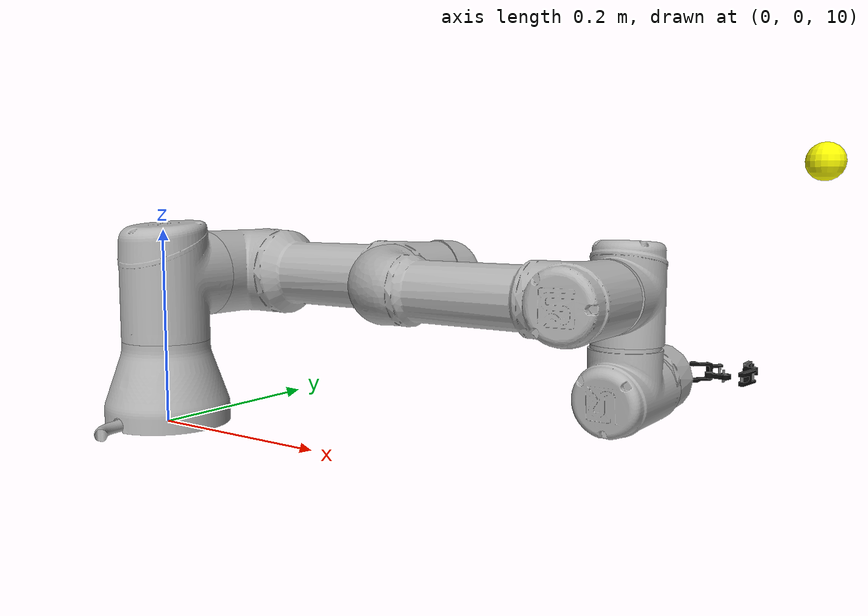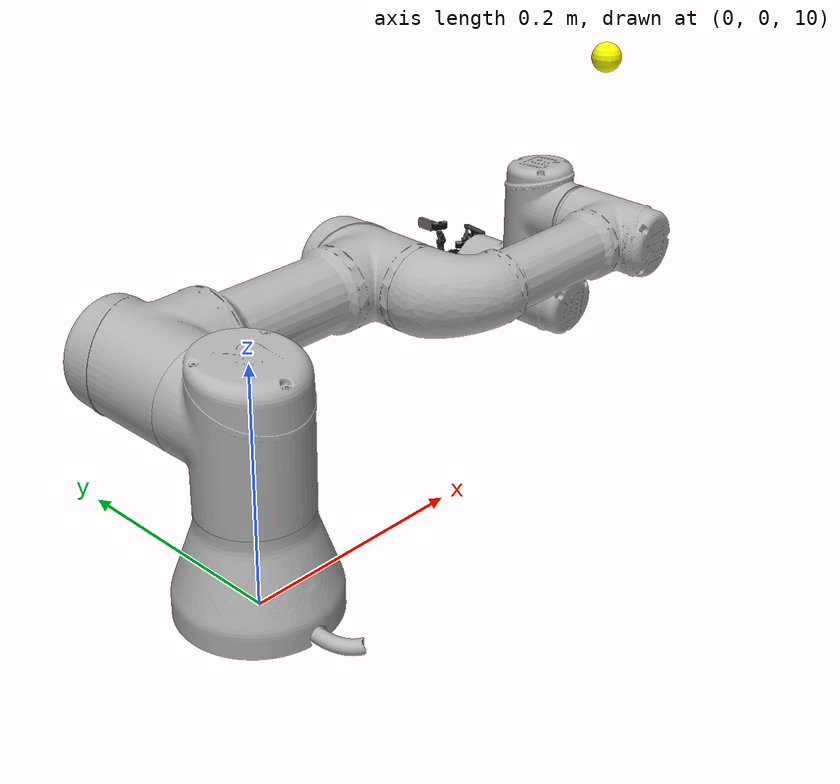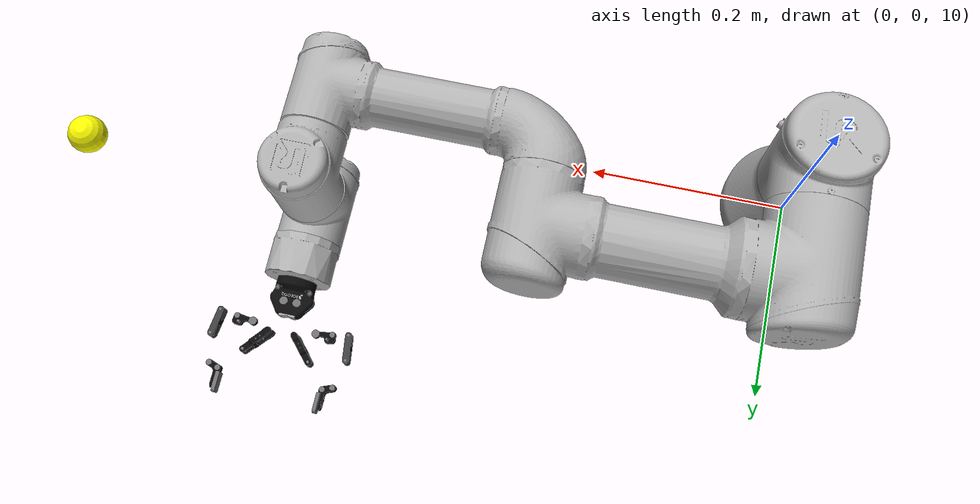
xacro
<?xml version="1.0"?>
<robot xmlns:xacro="http://ros.org/wiki/xacro"
       name="ur3" >

  <!-- common stuff -->
  <xacro:include filename="$(find ur_description)/urdf/common.gazebo_camera.xacro" />

  <!-- ur3 -->
  <xacro:include filename="$(find ur_description)/urdf/ur3.urdf_camera.xacro" />

  <!-- arm -->
  <xacro:ur3_robot prefix="" joint_limited="false" />

  <!-- gripper -->
  <xacro:include filename="$(find robotiq_85_description)/urdf/robotiq_85_gripper.urdf.xacro" />

  <link name="world" />

  <joint name="world_joint" type="fixed">
    <parent link="world" />
    <child link = "base_link" />
    <origin xyz="0.0 0.0 10.0" rpy="0.0 0.0 0.0" />
  </joint>

  <xacro:robotiq_85_gripper prefix="" parent="tool0" >
    <origin xyz="0.0 0.0 -0.01" rpy="1.57 -1.57 0"/>
  </xacro:robotiq_85_gripper>

</robot>

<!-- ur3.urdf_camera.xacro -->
<robot xmlns:xacro="http://ros.org/wiki/xacro">

<!--
  Author: Felix Messmer
-->

  <xacro:property name="cameraSize" value="0.04"/>
  <xacro:property name="cameraMass" value="0.15"/>

  <xacro:include filename="$(find ur_description)/urdf/ur.transmission.xacro" />
  <xacro:include filename="$(find ur_description)/urdf/ur.gazebo.xacro" />

  <xacro:property name="pi" value="3.14159265" />

  <!-- Inertia parameters -->
  <xacro:property name="base_mass" value="2.0" />  <!-- This mass might be incorrect -->
  <xacro:property name="shoulder_mass" value="2.0" />
  <xacro:property name="upper_arm_mass" value="3.42" />
  <xacro:property name="forearm_mass" value="1.26" />
  <xacro:property name="wrist_1_mass" value="0.8" />
  <xacro:property name="wrist_2_mass" value="0.8" />
  <xacro:property name="wrist_3_mass" value="0.35" />

  <xacro:property name="shoulder_cog" value="0.0 -0.02 0.0" />
  <xacro:property name="upper_arm_cog" value="0.13 0.0 0.1157" />
  <xacro:property name="forearm_cog" value="0.05 0.0 0.0238" />
  <xacro:property name="wrist_1_cog" value="0.0 0.0 0.01" />
  <xacro:property name="wrist_2_cog" value="0.0 0.0 0.01" />
  <xacro:property name="wrist_3_cog" value="0.0 0.0 -0.02" />

  <!-- Kinematic model -->
  <!-- Properties from urcontrol.conf -->
  <xacro:property name="ur3_d1" value="0.1519" />
  <xacro:property name="ur3_a2" value="-0.24365" />
  <xacro:property name="ur3_a3" value="-0.21325" />
  <xacro:property name="ur3_d4" value="0.11235" />
  <xacro:property name="ur3_d5" value="0.08535" />
  <xacro:property name="ur3_d6" value="0.0819" />

  <!-- Arbitrary offsets for shoulder/elbow joints -->
  <xacro:property name="shoulder_offset" value="0.1198" />  <!-- measured from model -->
  <xacro:property name="elbow_offset" value="-0.0925" /> <!-- measured from model -->

  <!-- link lengths used in model -->
  <xacro:property name="shoulder_height" value="${ur3_d1}" />
  <xacro:property name="upper_arm_length" value="${-ur3_a2}" />
  <xacro:property name="forearm_length" value="${-ur3_a3}" />
  <xacro:property name="wrist_1_length" value="${ur3_d4 - elbow_offset - shoulder_offset}" />
  <xacro:property name="wrist_2_length" value="${ur3_d5}" />
  <xacro:property name="wrist_3_length" value="${ur3_d6}" />

  <xacro:macro name="cylinder_inertial" params="radius length mass *origin">
    <inertial>
      <mass value="${mass}" />
      <xacro:insert_block name="origin" />
      <inertia ixx="${0.0833333 * mass * (3 * radius * radius + length * length)}" ixy="0.0" ixz="0.0"
        iyy="${0.0833333 * mass * (3 * radius * radius + length * length)}" iyz="0.0"
        izz="${0.5 * mass * radius * radius}" />
    </inertial>
  </xacro:macro>

  <xacro:macro name="ur3_robot" params="prefix joint_limited">

    <link name="${prefix}base_link" >
      <visual>
        <geometry>
          <mesh filename="package://ur_description/meshes/ur3/visual/base.dae"/>
        </geometry>
        <material name="LightGrey">
          <color rgba="0.7 0.7 0.7 1.0"/>
        </material>
      </visual>
      <collision>
        <geometry>
          <mesh filename="package://ur_description/meshes/ur3/collision/base.stl"/>
        </geometry>
      </collision>
      <xacro:cylinder_inertial radius="0.075" length="0.038" mass="${base_mass}">
        <origin xyz="0.0 0.0 0.0" rpy="0 0 0" />
      </xacro:cylinder_inertial>
    </link>

    <joint name="${prefix}shoulder_pan_joint" type="revolute">
      <parent link="${prefix}base_link" />
      <child link = "${prefix}shoulder_link" />
      <origin xyz="0.0 0.0 ${shoulder_height}" rpy="0.0 0.0 0.0" />
      <axis xyz="0 0 1" />
      <xacro:unless value="${joint_limited}">
        <limit lower="${-2.0 * pi}" upper="${2.0 * pi}" effort="330.0" velocity="2.16"/>
      </xacro:unless>
      <xacro:if value="${joint_limited}">
        <limit lower="${-pi}" upper="${pi}" effort="330.0" velocity="2.16"/>
      </xacro:if>
      <dynamics damping="0.0" friction="0.0"/>
    </joint>

    <link name="${prefix}shoulder_link">
      <visual>
        <geometry>
          <mesh filename="package://ur_description/meshes/ur3/visual/shoulder.dae"/>
        </geometry>
        <material name="LightGrey">
          <color rgba="0.7 0.7 0.7 1.0"/>
        </material>
      </visual>
      <collision>
        <geometry>
          <mesh filename="package://ur_description/meshes/ur3/collision/shoulder.stl"/>
        </geometry>
      </collision>
      <xacro:cylinder_inertial radius="0.075" length="0.178" mass="${shoulder_mass}">
        <origin xyz="0.0 0.0 0.0" rpy="0 0 0" />
      </xacro:cylinder_inertial>
    </link>

    <joint name="${prefix}shoulder_lift_joint" type="revolute">
      <parent link="${prefix}shoulder_link" />
      <child link = "${prefix}upper_arm_link" />
      <origin xyz="0.0 ${shoulder_offset} 0.0" rpy="0.0 ${pi / 2.0} 0.0" />
      <axis xyz="0 1 0" />
      <xacro:unless value="${joint_limited}">
        <limit lower="${-2.0 * pi}" upper="${2.0 * pi}" effort="330.0" velocity="2.16"/>
      </xacro:unless>
      <xacro:if value="${joint_limited}">
        <limit lower="${-pi}" upper="${pi}" effort="330.0" velocity="2.16"/>
      </xacro:if>
      <dynamics damping="0.0" friction="0.0"/>
    </joint>

    <link name="${prefix}upper_arm_link">
      <visual>
        <geometry>
          <mesh filename="package://ur_description/meshes/ur3/visual/upperarm.dae"/>
        </geometry>
        <material name="LightGrey">
          <color rgba="0.7 0.7 0.7 1.0"/>
        </material>
      </visual>
      <collision>
        <geometry>
          <mesh filename="package://ur_description/meshes/ur3/collision/upperarm.stl"/>
        </geometry>
      </collision>
      <xacro:cylinder_inertial radius="0.075" length="${-ur3_a2}" mass="${upper_arm_mass}">
        <origin xyz="0.0 0.0 ${-ur3_a2/2.0}" rpy="0 0 0" />
      </xacro:cylinder_inertial>
    </link>

    <joint name="${prefix}elbow_joint" type="revolute">
      <parent link="${prefix}upper_arm_link" />
      <child link = "${prefix}forearm_link" />
      <origin xyz="0.0 ${elbow_offset} ${upper_arm_length}" rpy="0.0 0.0 0.0" />
      <axis xyz="0 1 0" />
      <xacro:unless value="${joint_limited}">
        <limit lower="${-2.0 * pi}" upper="${2.0 * pi}" effort="150.0" velocity="3.15"/>
      </xacro:unless>
      <xacro:if value="${joint_limited}">
        <limit lower="${-pi}" upper="${pi}" effort="150.0" velocity="3.15"/>
      </xacro:if>
      <dynamics damping="0.0" friction="0.0"/>
    </joint>

    <link name="${prefix}forearm_link">
      <visual>
         <geometry>
          <mesh filename="package://ur_description/meshes/ur3/visual/forearm.dae"/>
        </geometry>
        <material name="LightGrey">
          <color rgba="0.7 0.7 0.7 1.0"/>
        </material>
      </visual>
      <collision>
        <geometry>
          <mesh filename="package://ur_description/meshes/ur3/collision/forearm.stl"/>
        </geometry>
      </collision>
      <xacro:cylinder_inertial radius="0.075" length="${-ur3_a3}" mass="${forearm_mass}">
        <origin xyz="0.0 0.0 ${-ur3_a3/2.0}" rpy="0 0 0" />
      </xacro:cylinder_inertial>
    </link>

    <joint name="${prefix}wrist_1_joint" type="revolute">
      <parent link="${prefix}forearm_link" />
      <child link = "${prefix}wrist_1_link" />
      <origin xyz="0.0 0.0 ${forearm_length}" rpy="0.0 ${pi / 2.0} 0.0" />
      <axis xyz="0 1 0" />
      <xacro:unless value="${joint_limited}">
        <limit lower="${-2.0 * pi}" upper="${2.0 * pi}" effort="54.0" velocity="3.2"/>
      </xacro:unless>
      <xacro:if value="${joint_limited}">
        <limit lower="${-pi}" upper="${pi}" effort="54.0" velocity="3.2"/>
      </xacro:if>
      <dynamics damping="0.0" friction="0.0"/>
    </joint>

    <link name="${prefix}wrist_1_link">
      <visual>
        <geometry>
          <mesh filename="package://ur_description/meshes/ur3/visual/wrist1.dae"/>
        </geometry>
        <material name="LightGrey">
          <color rgba="0.7 0.7 0.7 1.0"/>
        </material>
      </visual>
      <collision>
        <geometry>
          <mesh filename="package://ur_description/meshes/ur3/collision/wrist1.stl"/>
        </geometry>
      </collision>
      <xacro:cylinder_inertial radius="0.075" length="0.12" mass="${wrist_1_mass}">
        <origin xyz="0.0 0.0 0.0" rpy="0 0 0" />
      </xacro:cylinder_inertial>
    </link>

    <joint name="${prefix}wrist_2_joint" type="revolute">
      <parent link="${prefix}wrist_1_link" />
      <child link = "${prefix}wrist_2_link" />
      <origin xyz="0.0 ${wrist_1_length} 0.0" rpy="0.0 0.0 0.0" />
      <axis xyz="0 0 1" />
      <xacro:unless value="${joint_limited}">
        <limit lower="${-2.0 * pi}" upper="${2.0 * pi}" effort="54.0" velocity="3.2"/>
      </xacro:unless>
      <xacro:if value="${joint_limited}">
        <limit lower="${-pi}" upper="${pi}" effort="54.0" velocity="3.2"/>
      </xacro:if>
      <dynamics damping="0.0" friction="0.0"/>
    </joint>

    <link name="${prefix}wrist_2_link">
      <visual>
        <geometry>
          <mesh filename="package://ur_description/meshes/ur3/visual/wrist2.dae"/>
        </geometry>
        <material name="LightGrey">
          <color rgba="0.7 0.7 0.7 1.0"/>
        </material>
      </visual>
      <collision>
        <geometry>
          <mesh filename="package://ur_description/meshes/ur3/collision/wrist2.stl"/>
        </geometry>
      </collision>
      <xacro:cylinder_inertial radius="0.075" length="0.12" mass="${wrist_2_mass}">
        <origin xyz="0.0 0.0 0.0" rpy="0 0 0" />
      </xacro:cylinder_inertial>
    </link>

    <joint name="${prefix}wrist_3_joint" type="revolute">
      <parent link="${prefix}wrist_2_link" />
      <child link = "${prefix}wrist_3_link" />
      <origin xyz="0.0 0.0 ${wrist_2_length}" rpy="0.0 0.0 0.0" />
      <axis xyz="0 1 0" />
      <xacro:unless value="${joint_limited}">
        <limit lower="${-2.0 * pi}" upper="${2.0 * pi}" effort="54.0" velocity="3.2"/>
      </xacro:unless>
      <xacro:if value="${joint_limited}">
        <limit lower="${-pi}" upper="${pi}" effort="54.0" velocity="3.2"/>
      </xacro:if>
      <dynamics damping="0.0" friction="0.0"/>
    </joint>

    <link name="${prefix}wrist_3_link">
      <visual>
        <geometry>
          <mesh filename="package://ur_description/meshes/ur3/visual/wrist3.dae"/>
        </geometry>
        <material name="LightGrey">
          <color rgba="0.7 0.7 0.7 1.0"/>
        </material>
      </visual>
      <collision>
        <geometry>
          <mesh filename="package://ur_description/meshes/ur3/collision/wrist3.stl"/>
        </geometry>
      </collision>
      <xacro:cylinder_inertial radius="0.075" length="0.12" mass="${wrist_3_mass}">
        <origin xyz="0.0 0.0 0.0" rpy="0 0 0" />
      </xacro:cylinder_inertial>
    </link>

    <joint name="${prefix}ee_fixed_joint" type="fixed">
      <parent link="${prefix}wrist_3_link" />
      <child link = "${prefix}ee_link" />
      <origin xyz="0.0 ${wrist_3_length} 0.0" rpy="0.0 0.0 ${pi/2.0}" />
    </joint>

    <link name="${prefix}ee_link">
      <collision>
        <geometry>
          <box size="0.01 0.01 0.01"/>
        </geometry>
        <origin rpy="0 0 0" xyz="-0.01 0 0"/>
      </collision>
    </link>

    <xacro:ur_arm_transmission prefix="${prefix}" />
    <xacro:ur_arm_gazebo prefix="${prefix}" />

    <!-- ROS base_link to UR 'Base' Coordinates transform -->
    <link name="${prefix}base"/>
    <joint name="${prefix}base_link-base_fixed_joint" type="fixed">
      <!-- NOTE: this rotation is only needed as long as base_link itself is
                 not corrected wrt the real robot (ie: rotated over 180
                 degrees)
      -->
      <origin xyz="0 0 0" rpy="0 0 ${-pi}"/>
      <parent link="${prefix}base_link"/>
      <child link="${prefix}base"/>
    </joint>

    <!-- Frame coincident with all-zeros TCP on UR controller -->
    <link name="${prefix}tool0"/>
    <joint name="${prefix}wrist_3_link-tool0_fixed_joint" type="fixed">
      <origin xyz="0 ${wrist_3_length} 0" rpy="${pi/-2.0} 0 0"/>
      <parent link="${prefix}wrist_3_link"/>
      <child link="${prefix}tool0"/>
    </joint>

<!-- ===============================       OBJECTS        ========================== -->

  <link name="ball">
    <visual>
      <geometry>
        <sphere radius="0.015"/>
      </geometry>
      <material name="Yellow">
        <color rgba="1 1 0 1"/>
      </material>
    </visual>
  </link>
  <joint name="ball_j" type="fixed">
    <parent link="base_link"/>
    <child link="ball"/>
    <origin xyz="0.6 0.15 0.26"/>
  </joint>

  <gazebo reference="ball">
    <material>Gazebo/Yellow</material>
  </gazebo>

  </xacro:macro>

</robot>

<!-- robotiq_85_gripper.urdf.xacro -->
<robot name="robotiq_85_gripper" xmlns:xacro="http://ros.org/wiki/xacro">
    <xacro:include filename="$(find robotiq_85_description)/urdf/robotiq_85_gripper.transmission.xacro" />
    <property name="pi" value="3.14159"/>

    <xacro:macro name="robotiq_85_gripper" params="prefix parent *origin">

        <joint name="${prefix}robotiq_85_base_joint" type="fixed">
            <parent link="${parent}"/>
            <child link="${prefix}robotiq_85_base_link"/>
            <xacro:insert_block name="origin"/>
        </joint>

        <link name="${prefix}robotiq_85_base_link">
            <visual>
                <geometry>
                    <mesh filename="package://robotiq_85_description/meshes/visual/robotiq_85_base_link.dae"/>
                </geometry>
            </visual>
            <collision>
                <geometry>
                    <mesh filename="package://robotiq_85_description/meshes/collision/robotiq_85_base_link.stl"/>
                </geometry>
            </collision>
            <inertial>
                <mass value="0.636951" />
                <origin xyz="0.0 0.0 0.0" />
                <inertia ixx = "0.000380" ixy = "0.000000" ixz = "0.000000"
                         iyx = "0.000000" iyy = "0.001110" iyz = "0.000000"
                         izx = "0.000000" izy = "0.000000" izz = "0.001171" />
            </inertial>
        </link>

        <joint name="${prefix}robotiq_85_left_knuckle_joint" type="revolute">
            <parent link="${prefix}robotiq_85_base_link"/>
            <child link="${prefix}robotiq_85_left_knuckle_link"/>
            <axis xyz="0 0 1"/>
            <origin rpy="${pi} 0.0 0.0" xyz="0.05490451627 0.03060114443 0.0"/>
            <limit lower="0.0" upper="0.804" velocity="2.0" effort="1000"/>
        </joint>

        <joint name="${prefix}robotiq_85_right_knuckle_joint" type="continuous">
            <parent link="${prefix}robotiq_85_base_link"/>
            <child link="${prefix}robotiq_85_right_knuckle_link"/>
            <axis xyz="0 0 1"/>
            <origin rpy="0.0 0.0 0.0" xyz="0.05490451627 -0.03060114443 0.0"/>
            <limit lower="-3.14" upper="3.14" velocity="100.0" effort="1000"/>
            <mimic joint="${prefix}robotiq_85_left_knuckle_joint"/>
        </joint>

        <link name="${prefix}robotiq_85_left_knuckle_link">
            <visual>
                <geometry>
                    <mesh filename="package://robotiq_85_description/meshes/visual/robotiq_85_knuckle_link.dae"/>
                </geometry>
            </visual>
            <collision>
                <geometry>
                    <mesh filename="package://robotiq_85_description/meshes/collision/robotiq_85_knuckle_link.stl"/>
                </geometry>
            </collision>
            <inertial>
                <mass value="0.018491" />
                <origin xyz="0.0 0.0 0.0" />
                <inertia ixx = "0.000009" ixy = "-0.000001" ixz = "0.000000"
                         iyx = "-0.000001" iyy = "0.000001" iyz = "0.000000"
                         izx = "0.000000" izy = "0.000000" izz = "0.000010" />
            </inertial>
        </link>

        <link name="${prefix}robotiq_85_right_knuckle_link">
            <visual>
                <geometry>
                    <mesh filename="package://robotiq_85_description/meshes/visual/robotiq_85_knuckle_link.dae"/>
                </geometry>
            </visual>
            <collision>
                <geometry>
                    <mesh filename="package://robotiq_85_description/meshes/collision/robotiq_85_knuckle_link.stl"/>
                </geometry>
            </collision>
            <inertial>
                <mass value="0.018491" />
                <origin xyz="0.0 0.0 0.0" />
                <inertia ixx = "0.000009" ixy = "-0.000001" ixz = "0.000000"
                         iyx = "-0.000001" iyy = "0.000001" iyz = "0.000000"
                         izx = "0.000000" izy = "0.000000" izz = "0.000010" />
            </inertial>
        </link>

        <joint name="${prefix}robotiq_85_left_finger_joint" type="fixed">
            <parent link="${prefix}robotiq_85_left_knuckle_link"/>
            <child link="${prefix}robotiq_85_left_finger_link"/>
            <origin xyz="-0.00408552455 -0.03148604435 0.0" rpy="0 0 0" />
        </joint>

        <joint name="${prefix}robotiq_85_right_finger_joint" type="fixed">
            <parent link="${prefix}robotiq_85_right_knuckle_link"/>
            <child link="${prefix}robotiq_85_right_finger_link"/>
            <origin xyz="-0.00408552455 -0.03148604435 0.0" rpy="0 0 0" />
        </joint>

        <link name="${prefix}robotiq_85_left_finger_link">
            <visual>
                <geometry>
                    <mesh filename="package://robotiq_85_description/meshes/visual/robotiq_85_finger_link.dae"/>
                </geometry>
            </visual>
            <collision>
                <geometry>
                    <mesh filename="package://robotiq_85_description/meshes/collision/robotiq_85_finger_link.stl"/>
                </geometry>
            </collision>
	    <inertial>
                <mass value="0.027309" />
                <origin xyz="0.0 0.0 0.0" />
                <inertia ixx = "0.000003" ixy = "-0.000002" ixz = "0.000000"
                         iyx = "-0.000002" iyy = "0.000021" iyz = "0.000000"
                         izx = "0.000000" izy = "0.000000" izz = "0.000020" />
            </inertial>
        </link>

        <link name="${prefix}robotiq_85_right_finger_link">
            <visual>
                <geometry>
                    <mesh filename="package://robotiq_85_description/meshes/visual/robotiq_85_finger_link.dae"/>
                </geometry>
            </visual>
            <collision>
                <geometry>
                    <mesh filename="package://robotiq_85_description/meshes/collision/robotiq_85_finger_link.stl"/>
                </geometry>
            </collision>
            <inertial>
                <mass value="0.027309" />
                <origin xyz="0.0 0.0 0.0" />
                <inertia ixx = "0.000003" ixy = "-0.000002" ixz = "0.000000"
                         iyx = "-0.000002" iyy = "0.000021" iyz = "0.000000"
                         izx = "0.000000" izy = "0.000000" izz = "0.000020" />
            </inertial>
        </link>

        <joint name="${prefix}robotiq_85_left_inner_knuckle_joint" type="continuous">
            <parent link="${prefix}robotiq_85_base_link"/>
            <child link="${prefix}robotiq_85_left_inner_knuckle_link"/>
            <axis xyz="0 0 1"/>
            <origin xyz="0.06142 0.0127 0" rpy="${pi} 0.0 0.0" />
            <limit lower="-3.14" upper="3.14" velocity="100.0" effort="0.1"/>
            <mimic joint="${prefix}robotiq_85_left_knuckle_joint" offset="0"/>
        </joint>

        <joint name="${prefix}robotiq_85_right_inner_knuckle_joint" type="continuous">
            <parent link="${prefix}robotiq_85_base_link"/>
            <child link="${prefix}robotiq_85_right_inner_knuckle_link"/>
            <axis xyz="0 0 1"/>
            <origin xyz="0.06142 -0.0127 0" rpy="0 0 0"/>
            <limit lower="-3.14" upper="3.14" velocity="100.0" effort="0.1"/>
            <mimic joint="${prefix}robotiq_85_left_knuckle_joint" offset="0"/>
        </joint>

        <link name="${prefix}robotiq_85_left_inner_knuckle_link">
            <visual>
                <geometry>
                    <mesh filename="package://robotiq_85_description/meshes/visual/robotiq_85_inner_knuckle_link.dae"/>
                </geometry>
            </visual>
            <collision>
                <geometry>
                    <mesh filename="package://robotiq_85_description/meshes/collision/robotiq_85_inner_knuckle_link.stl"/>
                </geometry>
            </collision>
            <inertial>
                <mass value="0.029951" />
                <origin xyz="0.0 0.0 0.0" />
                <inertia ixx = "0.000039" ixy = "0.000000" ixz = "0.000000"
                         iyx = "0.000000" iyy = "0.000005" iyz = "0.000000"
                         izx = "0.000000" izy = "0.000000" izz = "0.000035" />
            </inertial>
        </link>
        <link name="${prefix}robotiq_85_right_inner_knuckle_link">
            <visual>
                <geometry>
                    <mesh filename="package://robotiq_85_description/meshes/visual/robotiq_85_inner_knuckle_link.dae"/>
                </geometry>
            </visual>
            <collision>
                <geometry>
                    <mesh filename="package://robotiq_85_description/meshes/collision/robotiq_85_inner_knuckle_link.stl"/>
                </geometry>
            </collision>
            <inertial>
                <mass value="0.029951" />
                <origin xyz="0.0 0.0 0.0" />
                <inertia ixx = "0.000039" ixy = "0.000000" ixz = "0.000000"
                         iyx = "0.000000" iyy = "0.000005" iyz = "0.000000"
                         izx = "0.000000" izy = "0.000000" izz = "0.000035" />
            </inertial>
        </link>

        <joint name="${prefix}robotiq_85_left_finger_tip_joint" type="continuous">
            <parent link="${prefix}robotiq_85_left_inner_knuckle_link"/>
            <child link="${prefix}robotiq_85_left_finger_tip_link"/>
            <axis xyz="0 0 1"/>
            <origin xyz="0.04303959807 -0.03759940821 0.0" rpy="0.0 0.0 0.0"/>
            <limit lower="-3.14" upper="3.14" velocity="100.0" effort="0.1"/>
            <mimic joint="${prefix}robotiq_85_left_knuckle_joint" multiplier="-1"/>
        </joint>

        <joint name="${prefix}robotiq_85_right_finger_tip_joint" type="continuous">
            <parent link="${prefix}robotiq_85_right_inner_knuckle_link"/>
            <child link="${prefix}robotiq_85_right_finger_tip_link"/>
            <axis xyz="0 0 1"/>
            <origin rpy="0.0 0.0 0.0" xyz="0.04303959807 -0.03759940821  0.0"/>
            <limit lower="-3.14" upper="3.14" velocity="100.0" effort="0.1"/>
            <mimic joint="${prefix}robotiq_85_left_knuckle_joint" multiplier="-1"/>
        </joint>

        <link name="${prefix}robotiq_85_left_finger_tip_link">
            <visual>
                <geometry>
                    <mesh filename="package://robotiq_85_description/meshes/visual/robotiq_85_finger_tip_link.dae"/>
                </geometry>
            </visual>
            <collision>
                <geometry>
                    <mesh filename="package://robotiq_85_description/meshes/collision/robotiq_85_finger_tip_link.stl"/>
                </geometry>
            </collision>
            <inertial>
                <mass value="0.019555" />
                <origin xyz="0.0 0.0 0.0" />
                <inertia ixx = "0.000002" ixy = "0.000000" ixz = "0.000000"
                         iyx = "0.000000" iyy = "0.000005" iyz = "0.000000"
                         izx = "0.000000" izy = "0.000000" izz = "0.000006" />
            </inertial>
        </link>

        <link name="${prefix}robotiq_85_right_finger_tip_link">
            <visual>
                <geometry>
                    <mesh filename="package://robotiq_85_description/meshes/visual/robotiq_85_finger_tip_link.dae"/>
                </geometry>
            </visual>
            <collision>
                <geometry>
                    <mesh filename="package://robotiq_85_description/meshes/collision/robotiq_85_finger_tip_link.stl"/>
                </geometry>
            </collision>
            <inertial>
                <mass value="0.019555" />
                <origin xyz="0.0 0.0 0.0" />
                <inertia ixx = "0.000002" ixy = "0.000000" ixz = "0.000000"
                         iyx = "0.000000" iyy = "0.000005" iyz = "0.000000"
                         izx = "0.000000" izy = "0.000000" izz = "0.000006" />
            </inertial>
        </link>

	<!-- Improve grasping physics -->
	<gazebo reference="${prefix}robotiq_85_left_finger_tip_link">
	<kp>1000000.0</kp>
	<kd>1.0</kd>
	<mu1>1.0</mu1>
	<mu2>1.0</mu2>
	<minDepth>0.001</minDepth>
	</gazebo>
	<gazebo reference="${prefix}robotiq_85_right_finger_tip_link">
	<kp>1000000.0</kp>
	<kd>1.0</kd>
	<mu1>1.0</mu1>
	<mu2>1.0</mu2>
	<minDepth>0.001</minDepth>
	</gazebo>

        <xacro:robotiq_85_gripper_transmission prefix="${prefix}" />

    </xacro:macro>

</robot>
